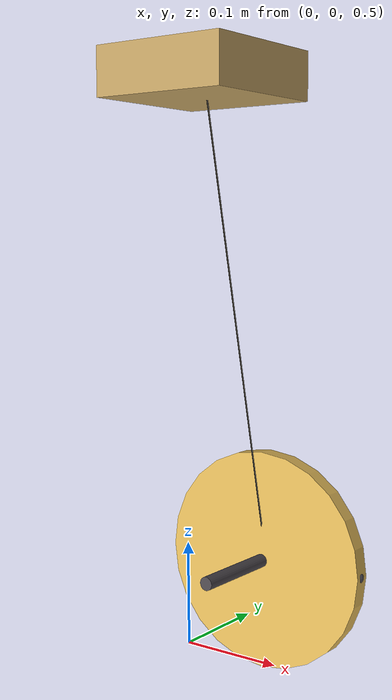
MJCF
<mujoco model="bicycle_wheel_gyroscope">
  <compiler angle="radian" coordinate="local" autolimits="true"/>
  <option timestep="0.0005" gravity="0 0 -9.81" integrator="implicitfast"
          impratio="3" cone="elliptic"/>

  <visual>
    <headlight diffuse="0 0 0" ambient="0.50 0.48 0.55" specular="0 0 0"/>
    <rgba haze="0.94 0.91 0.90 1"/>
    <global azimuth="120" elevation="-15" offwidth="1920" offheight="1080" fovy="38"/>
    <quality shadowsize="8192" offsamples="8"/>
    <map shadowclip="6" shadowscale="0.7"/>
  </visual>

  <asset>
    <texture type="skybox" builtin="flat"
             rgb1="0.74 0.68 0.86" rgb2="0.74 0.68 0.86"
             width="512" height="512" mark="none" markrgb="0 0 0"/>
    <material name="floor_mat" rgba="0.94 0.91 0.90 1" specular="0" shininess="0"/>
    <material name="wood_dark" rgba="0.78 0.65 0.40 1" specular="0.1" shininess="0.1"/>
    <material name="brass" rgba="0.90 0.74 0.36 1" specular="0.7" shininess="0.85"/>
    <material name="axle_mat" rgba="0.30 0.28 0.30 1" specular="0.5" shininess="0.6"/>
    <material name="string_mat" rgba="0.20 0.18 0.15 1" specular="0" shininess="0"/>
  </asset>

  <default>
    <geom solref="0.001 1" solimp="0.99 0.999 0.0001"/>
  </default>

  <worldbody>
    <light pos="0 0 12" dir="-0.30 0.55 -1" directional="true" castshadow="true"
           diffuse="0.85 0.82 0.78" specular="0.15 0.15 0.15"/>
    <light pos="0 0 8" dir="0.40 -0.30 -1" directional="true" castshadow="false"
           diffuse="0.28 0.28 0.34" specular="0 0 0"/>

    <geom name="floor" type="plane" size="40 40 0.1" material="floor_mat"/>

    <!-- Ceiling mount: bottom face at z=1.00, centered on the hook point. -->
    <geom name="ceiling_block" type="box" pos="0.09 -0.09 1.02" size="0.06 0.06 0.02"
          material="wood_dark"/>

    <!-- Fixed hook at underside of block; string stub meets block with no gap. -->
    <body name="pivot" pos="0.09 -0.09 1.00">
      <joint name="pivot" type="ball" damping="0"/>

      <geom name="hook_stub" type="cylinder" fromto="0 0 0  0 0 0.02"
            size="0.005" material="wood_dark" contype="0" conaffinity="0"/>

      <geom name="string" type="capsule"
            fromto="0 0 0.02  0 0.09 -0.4"
            size="0.0007" mass="0.001" material="string_mat"
            contype="0" conaffinity="0"/>

      <body name="gyro" pos="0 0.09 -0.4">
        <joint name="spin" type="hinge" axis="0 1 0" damping="0"/>
        <geom name="disc" type="cylinder" fromto="0 -0.0075 0  0 0.0075 0"
              size="0.10" material="brass" mass="0.50"
              contype="0" conaffinity="0"/>
        <!-- Rim mark: makes spin visible at video frame rate. -->
        <geom name="spin_mark" type="sphere" pos="0.095 0 0" size="0.006"
              material="axle_mat" mass="0"
              contype="0" conaffinity="0"/>
        <geom name="axle" type="cylinder" fromto="0 -0.09 0  0 0.09 0"
              size="0.006" material="axle_mat" mass="0.02"
              contype="0" conaffinity="0"/>
      </body>
    </body>

    <camera name="cam" pos="1.2 -0.5 0.7" fovy="38"
            xyaxes="0.578 0.816 0   -0.024 0.017 1.000"/>
  </worldbody>
</mujoco>
